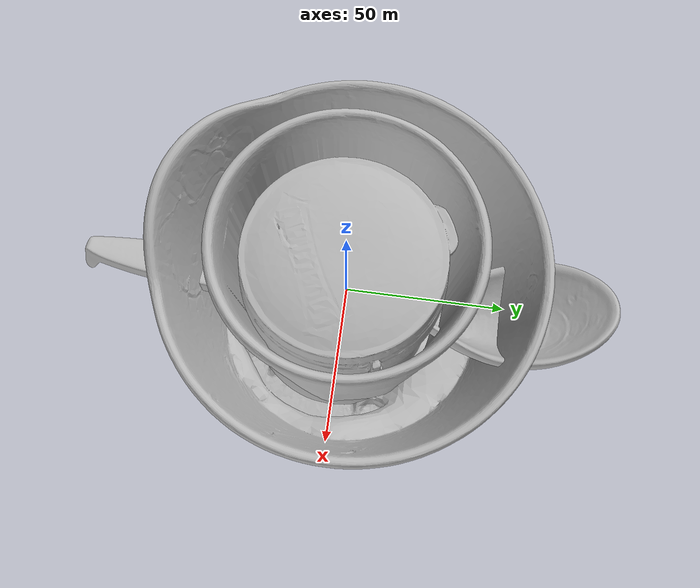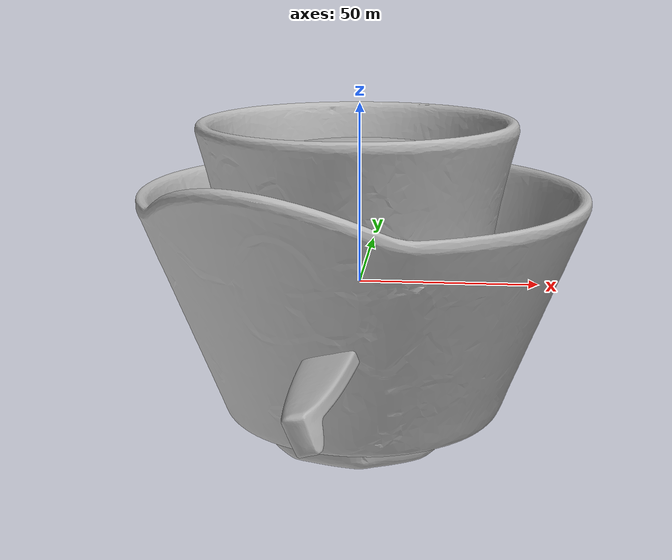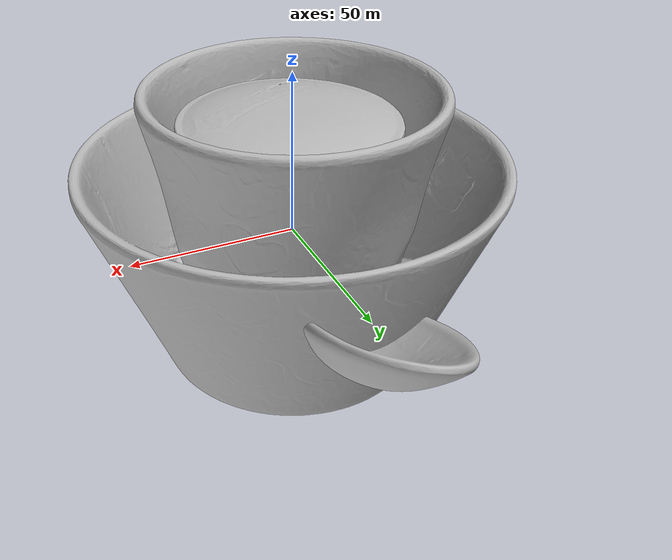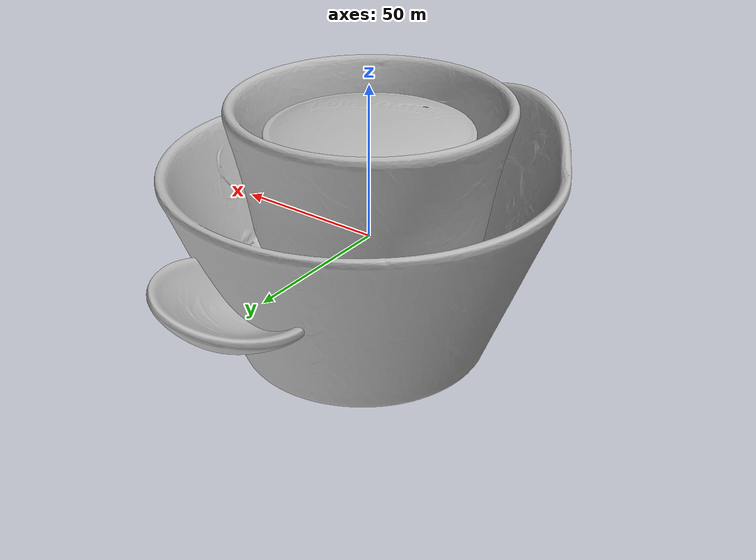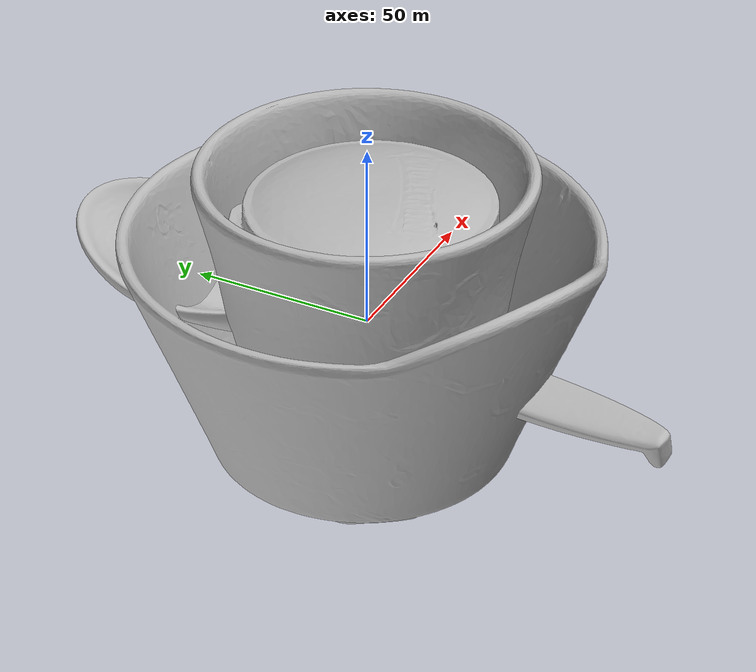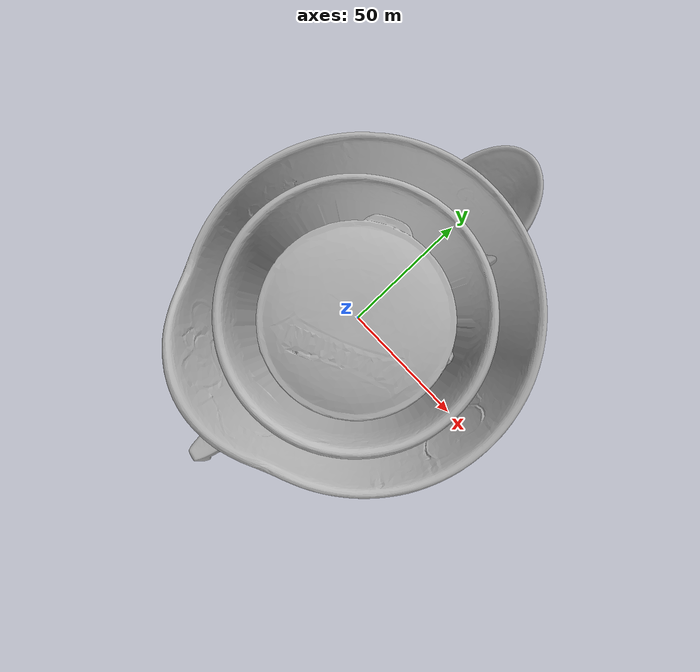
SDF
<sdf version="1.4">
 <world name="default">
  <light name="light1" type="point">
   <pose>0 0 1 0 0 0</pose>
   <diffuse>3 3 3 1</diffuse>
   <specular>3 3 3 1</specular>
  </light>
  <light name="light2" type="point">
   <pose>0 0.5 2 0 0 0</pose>
   <diffuse>1 1 1 1</diffuse>
   <specular>1 1 1 1</specular>
  </light>
  <light name="light3" type="point">
   <pose>0 0.5 2 0 0 0</pose>
   <diffuse>3 3 3 1</diffuse>
   <specular>3 3 3 1</specular>
  </light>
  <scene><ambient>0.7 0.7 0.7</ambient></scene>
  <model name="bottle1">
   <link name="link_bottle1">
    <collision name="default">
     <geometry>
      <mesh><uri>model://green_arrow/collision_meshes/collision.obj</uri><scale>1.0 1.0 1.0</scale></mesh>
     </geometry>
     <surface>
      <friction><ode><mu>0.5</mu><mu2>0.5</mu2></ode></friction>
      <contact><ode><max_vel>0</max_vel><min_depth>0.0001</min_depth><kp>1e8</kp></ode></contact>
     </surface>
    </collision>
    <visual name="default">
     <geometry>
      <mesh><uri>model://green_arrow/visual_meshes/visual.dae</uri><scale>1.0 1.0 1.0</scale></mesh>
     </geometry>
    </visual>
    <inertial>
     <mass>0.2764224410057068</mass>
     <pose>0.0005358477937988937 -0.0008270691032521427 0.002210969105362892 -0.06332196008274972 0.012988210902137025 0.674142157837799</pose>
     <inertia>
      <ixx>0.00020051825</ixx>
      <iyy>0.00020021446</iyy>
      <izz>0.00012947427</izz>
      <ixy>0</ixy>
      <ixz>0</ixz>
      <iyz>0</iyz>
     </inertia>
    </inertial>
   </link>
   <pose>0.14810940623283386 0.1409974992275238 0.039054177701473236 0.03614928035408248 0.024754134871529495 -0.2332923736383828</pose>
  </model>
  <model name="bottle2">
   <link name="link_bottle2">
    <collision name="default">
     <geometry>
      <mesh><uri>model://pure_zhen/collision_meshes/collision.obj</uri><scale>1.0 1.0 1.0</scale></mesh>
     </geometry>
     <surface>
      <friction><ode><mu>0.5</mu><mu2>0.5</mu2></ode></friction>
      <contact><ode><max_vel>0</max_vel><min_depth>0.0001</min_depth><kp>1e8</kp></ode></contact>
     </surface>
    </collision>
    <visual name="default">
     <geometry>
      <mesh><uri>model://pure_zhen/visual_meshes/visual.dae</uri><scale>1.0 1.0 1.0</scale></mesh>
     </geometry>
    </visual>
    <inertial>
     <mass>0.2372884750366211</mass>
     <pose>-8.582299778936431e-05 0.0002452346670906991 -0.0015797418309375644 -0.027641670524606855 0.005623077019143168 0.30585846122319743</pose>
     <inertia>
      <ixx>0.0007112664</ixx>
      <iyy>0.00071145216</iyy>
      <izz>7.51383e-05</izz>
      <ixy>0</ixy>
      <ixz>0</ixz>
      <iyz>0</iyz>
     </inertia>
    </inertial>
   </link>
   <pose>0.161086767911911 0.08203862607479095 0.09201149642467499 0.011610444652761712 0.016080578932276636 -2.0222910794304623</pose>
  </model>
  <model name="silverware1">
   <link name="link_silverware1">
    <collision name="default">
     <geometry>
      <mesh><uri>model://doraemon_spoon/collision_meshes/collision.obj</uri><scale>1.0 1.0 1.0</scale></mesh>
     </geometry>
     <surface>
      <friction><ode><mu>0.5</mu><mu2>0.5</mu2></ode></friction>
      <contact><ode><max_vel>0</max_vel><min_depth>0.0001</min_depth><kp>1e8</kp></ode></contact>
     </surface>
    </collision>
    <visual name="default">
     <geometry>
      <mesh><uri>model://doraemon_spoon/visual_meshes/visual.dae</uri><scale>1.0 1.0 1.0</scale></mesh>
     </geometry>
    </visual>
    <inertial>
     <mass>0.020818473771214485</mass>
     <pose>-0.022165074944496155 -0.0006374582881107926 -0.0033325462136417627 -0.009147017253597407 0.0738041759980984 -0.014123826591698564</pose>
     <inertia>
      <ixx>1.6307007e-06</ixx>
      <iyy>4.631433e-05</iyy>
      <izz>4.7101734e-05</izz>
      <ixy>0</ixy>
      <ixz>0</ixz>
      <iyz>0</iyz>
     </inertia>
    </inertial>
   </link>
   <pose>-0.08739272505044937 0.1680457442998886 0.014739278703927994 0.27899424580461185 -0.010337696123422788 -1.6308442935129186</pose>
  </model>
  <model name="stationery1">
   <link name="link_stationery1">
    <collision name="default">
     <geometry>
      <mesh><uri>model://correction_fuid/collision_meshes/collision.obj</uri><scale>1.0 1.0 1.0</scale></mesh>
     </geometry>
     <surface>
      <friction><ode><mu>0.5</mu><mu2>0.5</mu2></ode></friction>
      <contact><ode><max_vel>0</max_vel><min_depth>0.0001</min_depth><kp>1e8</kp></ode></contact>
     </surface>
    </collision>
    <visual name="default">
     <geometry>
      <mesh><uri>model://correction_fuid/visual_meshes/visual.dae</uri><scale>1.0 1.0 1.0</scale></mesh>
     </geometry>
    </visual>
    <inertial>
     <mass>0.03337494283914566</mass>
     <pose>-0.00012557735317386687 -0.0009722886024974287 -0.001618212671019137 -0.010846603423614418 0.019488389217657873 -0.01599245375892703</pose>
     <inertia>
      <ixx>3.2324202e-05</ixx>
      <iyy>1.9563013e-06</iyy>
      <izz>3.3165503e-05</izz>
      <ixy>0</ixy>
      <ixz>0</ixz>
      <iyz>0</iyz>
     </inertia>
    </inertial>
   </link>
   <pose>0.24467916786670685 -0.010693840682506561 0.009653897024691105 -0.004894129477614127 -0.03691476017725607 -1.6134750570666325</pose>
  </model>
  <model name="bowl1">
   <link name="link_bowl1">
    <collision name="default">
     <geometry>
      <mesh><uri>model://hello_kitty_bowl/collision_meshes/collision.obj</uri><scale>1.0 1.0 1.0</scale></mesh>
     </geometry>
     <surface>
      <friction><ode><mu>0.5</mu><mu2>0.5</mu2></ode></friction>
      <contact><ode><max_vel>0</max_vel><min_depth>0.0001</min_depth><kp>1e8</kp></ode></contact>
     </surface>
    </collision>
    <visual name="default">
     <geometry>
      <mesh><uri>model://hello_kitty_bowl/visual_meshes/visual.dae</uri><scale>1.0 1.0 1.0</scale></mesh>
     </geometry>
    </visual>
    <inertial>
     <mass>0.11590971797704697</mass>
     <pose>-0.0015402117278426886 0.0004577837826218456 -0.0080512510612607 0.004152729053700843 -0.12227221811834889 0.04345084117661168</pose>
     <inertia>
      <ixx>0.00017210246</ixx>
      <iyy>0.00018182951</iyy>
      <izz>0.00025734986</izz>
      <ixy>0</ixy>
      <ixz>0</ixz>
      <iyz>0</iyz>
     </inertia>
    </inertial>
   </link>
   <pose>-0.03470407426357269 0.17020775377750397 0.0374121218919754 0.00018718297813026806 0.0001171614329210064 -2.0861600321701315</pose>
  </model>
  <model name="cup1">
   <link name="link_cup1">
    <collision name="default">
     <geometry>
      <mesh><uri>model://hello_kitty_cup/collision_meshes/collision.obj</uri><scale>1.0 1.0 1.0</scale></mesh>
     </geometry>
     <surface>
      <friction><ode><mu>0.5</mu><mu2>0.5</mu2></ode></friction>
      <contact><ode><max_vel>0</max_vel><min_depth>0.0001</min_depth><kp>1e8</kp></ode></contact>
     </surface>
    </collision>
    <visual name="default">
     <geometry>
      <mesh><uri>model://hello_kitty_cup/visual_meshes/visual.dae</uri><scale>1.0 1.0 1.0</scale></mesh>
     </geometry>
    </visual>
    <inertial>
     <mass>0.06483803689479828</mass>
     <pose>0.00027251249412074685 0.0002795030304696411 0.003044978016987443 0.05779149237921037 0.007964744961503711 -0.020451485374324563</pose>
     <inertia>
      <ixx>8.928983e-05</ixx>
      <iyy>9.0285175e-05</iyy>
      <izz>7.52867e-05</izz>
      <ixy>0</ixy>
      <ixz>0</ixz>
      <iyz>0</iyz>
     </inertia>
    </inertial>
   </link>
   <pose>-0.04675627872347832 -0.16934740543365479 0.04621398448944092 -0.005711561365110193 0.010787347377116426 2.2739017985572128</pose>
  </model>
  <model name="plate1">
   <link name="link_plate1">
    <collision name="default">
     <geometry>
      <mesh><uri>model://hello_kitty_plate/collision_meshes/collision.obj</uri><scale>1.0 1.0 1.0</scale></mesh>
     </geometry>
     <surface>
      <friction><ode><mu>0.5</mu><mu2>0.5</mu2></ode></friction>
      <contact><ode><max_vel>0</max_vel><min_depth>0.0001</min_depth><kp>1e8</kp></ode></contact>
     </surface>
    </collision>
    <visual name="default">
     <geometry>
      <mesh><uri>model://hello_kitty_plate/visual_meshes/visual.dae</uri><scale>1.0 1.0 1.0</scale></mesh>
     </geometry>
    </visual>
    <inertial>
     <mass>0.035439908504486084</mass>
     <pose>0.007314295507967472 0.00028937257593497634 -0.0027947179041802883 -0.00010432032854243346 -0.007054443681780748 -0.014449040989024118</pose>
     <inertia>
      <ixx>6.833875e-05</ixx>
      <iyy>0.00012897578</iyy>
      <izz>0.00019583687</izz>
      <ixy>0</ixy>
      <ixz>0</ixz>
      <iyz>0</iyz>
     </inertia>
    </inertial>
   </link>
   <pose>0.0713963434100151 -0.01277075707912445 0.008291327394545078 0.0004608760589343057 0.004171120067858932 2.414661963700842</pose>
  </model>
  <model name="box4">
   <link name="link_box4">
    <collision name="default">
     <geometry>
      <mesh><uri>model://wooden_puzzle1/collision_meshes/collision.obj</uri><scale>1.0 1.0 1.0</scale></mesh>
     </geometry>
     <surface>
      <friction><ode><mu>0.5</mu><mu2>0.5</mu2></ode></friction>
      <contact><ode><max_vel>0</max_vel><min_depth>0.0001</min_depth><kp>1e8</kp></ode></contact>
     </surface>
    </collision>
    <visual name="default">
     <geometry>
      <mesh><uri>model://wooden_puzzle1/visual_meshes/visual.dae</uri><scale>1.0 1.0 1.0</scale></mesh>
     </geometry>
    </visual>
    <inertial>
     <mass>0.022725893184542656</mass>
     <pose>-0.00017350679263472557 7.972260937094688e-05 -9.191554272547364e-05 -0.07784633272711022 -0.26361483493671084 -0.5528696267966513</pose>
     <inertia>
      <ixx>4.2877546e-06</ixx>
      <iyy>4.205213e-06</iyy>
      <izz>4.2553816e-06</izz>
      <ixy>0</ixy>
      <ixz>0</ixz>
      <iyz>0</iyz>
     </inertia>
    </inertial>
   </link>
   <pose>0.28290560841560364 -0.08348709344863892 0.01686667464673519 0.006190147707705387 -0.009709336140564958 3.1240374282413104</pose>
  </model>
  <physics type="ode">
   <max_contacts>50</max_contacts>
   <ode>
    <solver><type>quick</type><iters>75</iters></solver>
    <constraints>
     <contact_max_correcting_vel>0</contact_max_correcting_vel>
     <contact_surface_layer>0</contact_surface_layer>
    </constraints>
   </ode>
  </physics>
 </world>
</sdf>
